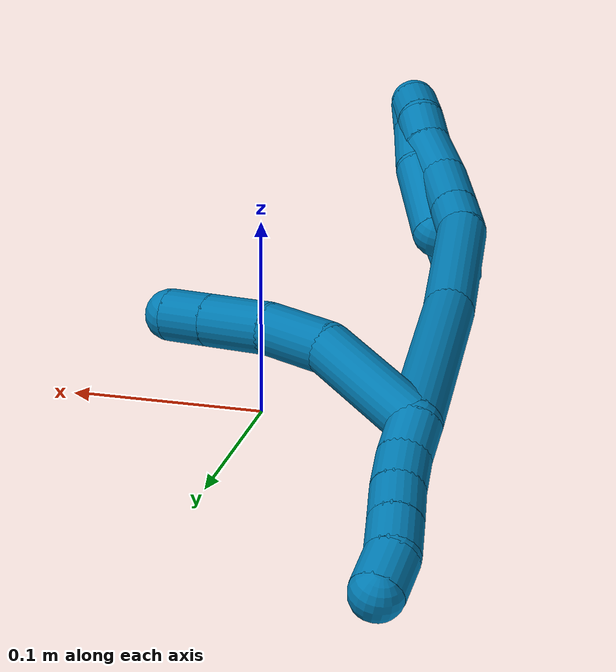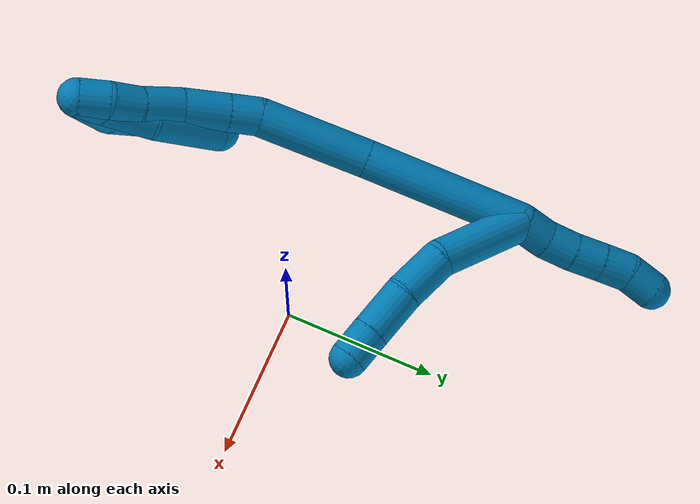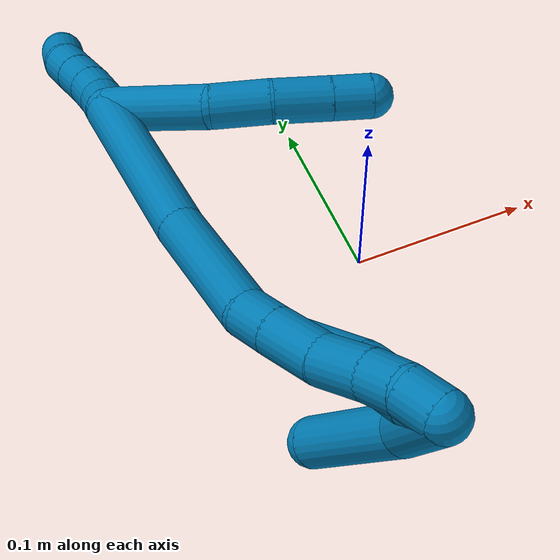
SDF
<sdf version="1.7">
 <world name="default">
  <model name="9">
   <static>0</static>
   <link name="9">
    <collision name="collision-cylinder-e_1_2_8">
     <pose>0.022627 -0.021543 -0.001822 1.65515 0.808144 0.870982</pose>
     <geometry><cylinder><radius>0.0125</radius><length>0.062591</length></cylinder></geometry>
     <surface>
      <friction><ode><mu>1.16</mu><mu2>1.16</mu2><slip1>0</slip1><slip2>0</slip2></ode></friction>
      <contact><ode><kp>1e+06</kp><kd>1</kd><max_vel>0</max_vel><min_depth>0.001</min_depth></ode></contact>
     </surface>
    </collision>
    <visual name="visual-cylinder-e_1_2_8">
     <pose>0.022627 -0.021543 -0.001822 1.65515 0.808144 0.870982</pose>
     <geometry><cylinder><radius>0.0125</radius><length>0.062591</length></cylinder></geometry>
     <material><ambient>0 0.490196 0.709804 1</ambient></material>
    </visual>
    <collision name="collision-cylinder-e_2_8_9">
     <pose>0.059779 -0.050211 -0.007309 2.04598 1.06675 1.53809</pose>
     <geometry><cylinder><radius>0.0125</radius><length>0.033177</length></cylinder></geometry>
     <surface>
      <friction><ode><mu>1.16</mu><mu2>1.16</mu2><slip1>0</slip1><slip2>0</slip2></ode></friction>
      <contact><ode><kp>1e+06</kp><kd>1</kd><max_vel>0</max_vel><min_depth>0.001</min_depth></ode></contact>
     </surface>
    </collision>
    <visual name="visual-cylinder-e_2_8_9">
     <pose>0.059779 -0.050211 -0.007309 2.04598 1.06675 1.53809</pose>
     <geometry><cylinder><radius>0.0125</radius><length>0.033177</length></cylinder></geometry>
     <material><ambient>0 0.490196 0.709804 1</ambient></material>
    </visual>
    <collision name="collision-cylinder-e_3_9_10">
     <pose>0.088606 -0.062518 -0.016381 2.37732 1.08839 1.96911</pose>
     <geometry><cylinder><radius>0.0125</radius><length>0.032287</length></cylinder></geometry>
     <surface>
      <friction><ode><mu>1.16</mu><mu2>1.16</mu2><slip1>0</slip1><slip2>0</slip2></ode></friction>
      <contact><ode><kp>1e+06</kp><kd>1</kd><max_vel>0</max_vel><min_depth>0.001</min_depth></ode></contact>
     </surface>
    </collision>
    <visual name="visual-cylinder-e_3_9_10">
     <pose>0.088606 -0.062518 -0.016381 2.37732 1.08839 1.96911</pose>
     <geometry><cylinder><radius>0.0125</radius><length>0.032287</length></cylinder></geometry>
     <material><ambient>0 0.490196 0.709804 1</ambient></material>
    </visual>
    <collision name="collision-cylinder-e_4_10_6">
     <pose>0.112673 -0.071168 -0.025392 2.37575 1.09743 1.9764</pose>
     <geometry><cylinder><radius>0.0125</radius><length>0.021945</length></cylinder></geometry>
     <surface>
      <friction><ode><mu>1.16</mu><mu2>1.16</mu2><slip1>0</slip1><slip2>0</slip2></ode></friction>
      <contact><ode><kp>1e+06</kp><kd>1</kd><max_vel>0</max_vel><min_depth>0.001</min_depth></ode></contact>
     </surface>
    </collision>
    <visual name="visual-cylinder-e_4_10_6">
     <pose>0.112673 -0.071168 -0.025392 2.37575 1.09743 1.9764</pose>
     <geometry><cylinder><radius>0.0125</radius><length>0.021945</length></cylinder></geometry>
     <material><ambient>0 0.490196 0.709804 1</ambient></material>
    </visual>
    <collision name="collision-cylinder-e_1_2_11">
     <pose>0.000913 0.009678 -0.002347 -1.80871 0.091463 -0.116245</pose>
     <geometry><cylinder><radius>0.0125</radius><length>0.02</length></cylinder></geometry>
     <surface>
      <friction><ode><mu>1.16</mu><mu2>1.16</mu2><slip1>0</slip1><slip2>0</slip2></ode></friction>
      <contact><ode><kp>1e+06</kp><kd>1</kd><max_vel>0</max_vel><min_depth>0.001</min_depth></ode></contact>
     </surface>
    </collision>
    <visual name="visual-cylinder-e_1_2_11">
     <pose>0.000913 0.009678 -0.002347 -1.80871 0.091463 -0.116245</pose>
     <geometry><cylinder><radius>0.0125</radius><length>0.02</length></cylinder></geometry>
     <material><ambient>0 0.490196 0.709804 1</ambient></material>
    </visual>
    <collision name="collision-cylinder-e_2_11_12">
     <pose>0.001787 0.029336 -0.005318 -1.63321 -0.003974 0.00423</pose>
     <geometry><cylinder><radius>0.0125</radius><length>0.02</length></cylinder></geometry>
     <surface>
      <friction><ode><mu>1.16</mu><mu2>1.16</mu2><slip1>0</slip1><slip2>0</slip2></ode></friction>
      <contact><ode><kp>1e+06</kp><kd>1</kd><max_vel>0</max_vel><min_depth>0.001</min_depth></ode></contact>
     </surface>
    </collision>
    <visual name="visual-cylinder-e_2_11_12">
     <pose>0.001787 0.029336 -0.005318 -1.63321 -0.003974 0.00423</pose>
     <geometry><cylinder><radius>0.0125</radius><length>0.02</length></cylinder></geometry>
     <material><ambient>0 0.490196 0.709804 1</ambient></material>
    </visual>
    <collision name="collision-cylinder-e_3_12_13">
     <pose>0.000971 0.049284 -0.006121 -1.58882 -0.077712 0.079125</pose>
     <geometry><cylinder><radius>0.0125</radius><length>0.02</length></cylinder></geometry>
     <surface>
      <friction><ode><mu>1.16</mu><mu2>1.16</mu2><slip1>0</slip1><slip2>0</slip2></ode></friction>
      <contact><ode><kp>1e+06</kp><kd>1</kd><max_vel>0</max_vel><min_depth>0.001</min_depth></ode></contact>
     </surface>
    </collision>
    <visual name="visual-cylinder-e_3_12_13">
     <pose>0.000971 0.049284 -0.006121 -1.58882 -0.077712 0.079125</pose>
     <geometry><cylinder><radius>0.0125</radius><length>0.02</length></cylinder></geometry>
     <material><ambient>0 0.490196 0.709804 1</ambient></material>
    </visual>
    <collision name="collision-cylinder-e_4_13_14">
     <pose>-0.000479 0.069225 -0.00662 -1.60276 -0.06745 0.06964</pose>
     <geometry><cylinder><radius>0.0125</radius><length>0.02</length></cylinder></geometry>
     <surface>
      <friction><ode><mu>1.16</mu><mu2>1.16</mu2><slip1>0</slip1><slip2>0</slip2></ode></friction>
      <contact><ode><kp>1e+06</kp><kd>1</kd><max_vel>0</max_vel><min_depth>0.001</min_depth></ode></contact>
     </surface>
    </collision>
    <visual name="visual-cylinder-e_4_13_14">
     <pose>-0.000479 0.069225 -0.00662 -1.60276 -0.06745 0.06964</pose>
     <geometry><cylinder><radius>0.0125</radius><length>0.02</length></cylinder></geometry>
     <material><ambient>0 0.490196 0.709804 1</ambient></material>
    </visual>
    <collision name="collision-cylinder-e_5_14_5">
     <pose>0.000527 0.088898 -0.008692 -1.74966 0.168858 -0.201917</pose>
     <geometry><cylinder><radius>0.0125</radius><length>0.02</length></cylinder></geometry>
     <surface>
      <friction><ode><mu>1.16</mu><mu2>1.16</mu2><slip1>0</slip1><slip2>0</slip2></ode></friction>
      <contact><ode><kp>1e+06</kp><kd>1</kd><max_vel>0</max_vel><min_depth>0.001</min_depth></ode></contact>
     </surface>
    </collision>
    <visual name="visual-cylinder-e_5_14_5">
     <pose>0.000527 0.088898 -0.008692 -1.74966 0.168858 -0.201917</pose>
     <geometry><cylinder><radius>0.0125</radius><length>0.02</length></cylinder></geometry>
     <material><ambient>0 0.490196 0.709804 1</ambient></material>
    </visual>
    <collision name="collision-cylinder-e_1_2_15">
     <pose>-0.003211 -0.052531 -0.007698 1.71631 -0.060397 -0.069886</pose>
     <geometry><cylinder><radius>0.0125</radius><length>0.106378</length></cylinder></geometry>
     <surface>
      <friction><ode><mu>1.16</mu><mu2>1.16</mu2><slip1>0</slip1><slip2>0</slip2></ode></friction>
      <contact><ode><kp>1e+06</kp><kd>1</kd><max_vel>0</max_vel><min_depth>0.001</min_depth></ode></contact>
     </surface>
    </collision>
    <visual name="visual-cylinder-e_1_2_15">
     <pose>-0.003211 -0.052531 -0.007698 1.71631 -0.060397 -0.069886</pose>
     <geometry><cylinder><radius>0.0125</radius><length>0.106378</length></cylinder></geometry>
     <material><ambient>0 0.490196 0.709804 1</ambient></material>
    </visual>
    <collision name="collision-cylinder-e_2_15_16">
     <pose>-0.006297 -0.141762 -0.017668 1.63262 0.003366 0.003581</pose>
     <geometry><cylinder><radius>0.0125</radius><length>0.07354</length></cylinder></geometry>
     <surface>
      <friction><ode><mu>1.16</mu><mu2>1.16</mu2><slip1>0</slip1><slip2>0</slip2></ode></friction>
      <contact><ode><kp>1e+06</kp><kd>1</kd><max_vel>0</max_vel><min_depth>0.001</min_depth></ode></contact>
     </surface>
    </collision>
    <visual name="visual-cylinder-e_2_15_16">
     <pose>-0.006297 -0.141762 -0.017668 1.63262 0.003366 0.003581</pose>
     <geometry><cylinder><radius>0.0125</radius><length>0.07354</length></cylinder></geometry>
     <material><ambient>0 0.490196 0.709804 1</ambient></material>
    </visual>
    <collision name="collision-cylinder-e_3_16_17">
     <pose>-0.003398 -0.188393 -0.020644 1.64158 0.271845 0.29153</pose>
     <geometry><cylinder><radius>0.0125</radius><length>0.020672</length></cylinder></geometry>
     <surface>
      <friction><ode><mu>1.16</mu><mu2>1.16</mu2><slip1>0</slip1><slip2>0</slip2></ode></friction>
      <contact><ode><kp>1e+06</kp><kd>1</kd><max_vel>0</max_vel><min_depth>0.001</min_depth></ode></contact>
     </surface>
    </collision>
    <visual name="visual-cylinder-e_3_16_17">
     <pose>-0.003398 -0.188393 -0.020644 1.64158 0.271845 0.29153</pose>
     <geometry><cylinder><radius>0.0125</radius><length>0.020672</length></cylinder></geometry>
     <material><ambient>0 0.490196 0.709804 1</ambient></material>
    </visual>
    <collision name="collision-cylinder-e_4_17_18">
     <pose>0.003747 -0.212839 -0.022143 1.62546 0.292014 0.308177</pose>
     <geometry><cylinder><radius>0.0125</radius><length>0.030358</length></cylinder></geometry>
     <surface>
      <friction><ode><mu>1.16</mu><mu2>1.16</mu2><slip1>0</slip1><slip2>0</slip2></ode></friction>
      <contact><ode><kp>1e+06</kp><kd>1</kd><max_vel>0</max_vel><min_depth>0.001</min_depth></ode></contact>
     </surface>
    </collision>
    <visual name="visual-cylinder-e_4_17_18">
     <pose>0.003747 -0.212839 -0.022143 1.62546 0.292014 0.308177</pose>
     <geometry><cylinder><radius>0.0125</radius><length>0.030358</length></cylinder></geometry>
     <material><ambient>0 0.490196 0.709804 1</ambient></material>
    </visual>
    <collision name="collision-cylinder-e_5_18_19">
     <pose>0.014003 -0.239733 -0.022046 1.49893 0.442872 0.413031</pose>
     <geometry><cylinder><radius>0.0125</radius><length>0.027473</length></cylinder></geometry>
     <surface>
      <friction><ode><mu>1.16</mu><mu2>1.16</mu2><slip1>0</slip1><slip2>0</slip2></ode></friction>
      <contact><ode><kp>1e+06</kp><kd>1</kd><max_vel>0</max_vel><min_depth>0.001</min_depth></ode></contact>
     </surface>
    </collision>
    <visual name="visual-cylinder-e_5_18_19">
     <pose>0.014003 -0.239733 -0.022046 1.49893 0.442872 0.413031</pose>
     <geometry><cylinder><radius>0.0125</radius><length>0.027473</length></cylinder></geometry>
     <material><ambient>0 0.490196 0.709804 1</ambient></material>
    </visual>
    <collision name="collision-cylinder-e_6_19_20">
     <pose>0.02314 -0.262005 -0.02 1.45457 0.315428 0.281227</pose>
     <geometry><cylinder><radius>0.0125</radius><length>0.020954</length></cylinder></geometry>
     <surface>
      <friction><ode><mu>1.16</mu><mu2>1.16</mu2><slip1>0</slip1><slip2>0</slip2></ode></friction>
      <contact><ode><kp>1e+06</kp><kd>1</kd><max_vel>0</max_vel><min_depth>0.001</min_depth></ode></contact>
     </surface>
    </collision>
    <visual name="visual-cylinder-e_6_19_20">
     <pose>0.02314 -0.262005 -0.02 1.45457 0.315428 0.281227</pose>
     <geometry><cylinder><radius>0.0125</radius><length>0.020954</length></cylinder></geometry>
     <material><ambient>0 0.490196 0.709804 1</ambient></material>
    </visual>
    <collision name="collision-cylinder-e_7_20_1">
     <pose>0.029151 -0.28174 -0.020205 1.7082 0.271053 0.310512</pose>
     <geometry><cylinder><radius>0.0125</radius><length>0.020624</length></cylinder></geometry>
     <surface>
      <friction><ode><mu>1.16</mu><mu2>1.16</mu2><slip1>0</slip1><slip2>0</slip2></ode></friction>
      <contact><ode><kp>1e+06</kp><kd>1</kd><max_vel>0</max_vel><min_depth>0.001</min_depth></ode></contact>
     </surface>
    </collision>
    <visual name="visual-cylinder-e_7_20_1">
     <pose>0.029151 -0.28174 -0.020205 1.7082 0.271053 0.310512</pose>
     <geometry><cylinder><radius>0.0125</radius><length>0.020624</length></cylinder></geometry>
     <material><ambient>0 0.490196 0.709804 1</ambient></material>
    </visual>
    <collision name="collision-cylinder-e_1_1_21">
     <pose>0.026214 -0.278757 -0.033922 -2.33753 -0.309695 0.703699</pose>
     <geometry><cylinder><radius>0.0125</radius><length>0.037396</length></cylinder></geometry>
     <surface>
      <friction><ode><mu>1.16</mu><mu2>1.16</mu2><slip1>0</slip1><slip2>0</slip2></ode></friction>
      <contact><ode><kp>1e+06</kp><kd>1</kd><max_vel>0</max_vel><min_depth>0.001</min_depth></ode></contact>
     </surface>
    </collision>
    <visual name="visual-cylinder-e_1_1_21">
     <pose>0.026214 -0.278757 -0.033922 -2.33753 -0.309695 0.703699</pose>
     <geometry><cylinder><radius>0.0125</radius><length>0.037396</length></cylinder></geometry>
     <material><ambient>0 0.490196 0.709804 1</ambient></material>
    </visual>
    <collision name="collision-cylinder-e_2_21_4">
     <pose>0.005036 -0.24283 -0.060648 -2.1273 -0.51728 0.888794</pose>
     <geometry><cylinder><radius>0.0125</radius><length>0.062604</length></cylinder></geometry>
     <surface>
      <friction><ode><mu>1.16</mu><mu2>1.16</mu2><slip1>0</slip1><slip2>0</slip2></ode></friction>
      <contact><ode><kp>1e+06</kp><kd>1</kd><max_vel>0</max_vel><min_depth>0.001</min_depth></ode></contact>
     </surface>
    </collision>
    <visual name="visual-cylinder-e_2_21_4">
     <pose>0.005036 -0.24283 -0.060648 -2.1273 -0.51728 0.888794</pose>
     <geometry><cylinder><radius>0.0125</radius><length>0.062604</length></cylinder></geometry>
     <material><ambient>0 0.490196 0.709804 1</ambient></material>
    </visual>
    <collision name="collision-cylinder-e_1_1_22">
     <pose>0.029584 -0.282062 -0.023821 -1.80338 -0.233702 0.294725</pose>
     <geometry><cylinder><radius>0.0125</radius><length>0.020113</length></cylinder></geometry>
     <surface>
      <friction><ode><mu>1.16</mu><mu2>1.16</mu2><slip1>0</slip1><slip2>0</slip2></ode></friction>
      <contact><ode><kp>1e+06</kp><kd>1</kd><max_vel>0</max_vel><min_depth>0.001</min_depth></ode></contact>
     </surface>
    </collision>
    <visual name="visual-cylinder-e_1_1_22">
     <pose>0.029584 -0.282062 -0.023821 -1.80338 -0.233702 0.294725</pose>
     <geometry><cylinder><radius>0.0125</radius><length>0.020113</length></cylinder></geometry>
     <material><ambient>0 0.490196 0.709804 1</ambient></material>
    </visual>
    <collision name="collision-cylinder-e_2_22_23">
     <pose>0.024416 -0.256074 -0.027265 -1.64283 -0.170254 0.182914</pose>
     <geometry><cylinder><radius>0.0125</radius><length>0.033508</length></cylinder></geometry>
     <surface>
      <friction><ode><mu>1.16</mu><mu2>1.16</mu2><slip1>0</slip1><slip2>0</slip2></ode></friction>
      <contact><ode><kp>1e+06</kp><kd>1</kd><max_vel>0</max_vel><min_depth>0.001</min_depth></ode></contact>
     </surface>
    </collision>
    <visual name="visual-cylinder-e_2_22_23">
     <pose>0.024416 -0.256074 -0.027265 -1.64283 -0.170254 0.182914</pose>
     <geometry><cylinder><radius>0.0125</radius><length>0.033508</length></cylinder></geometry>
     <material><ambient>0 0.490196 0.709804 1</ambient></material>
    </visual>
    <collision name="collision-cylinder-e_3_23_3">
     <pose>0.013798 -0.218111 -0.032358 -1.75051 -0.342118 0.408154</pose>
     <geometry><cylinder><radius>0.0125</radius><length>0.046379</length></cylinder></geometry>
     <surface>
      <friction><ode><mu>1.16</mu><mu2>1.16</mu2><slip1>0</slip1><slip2>0</slip2></ode></friction>
      <contact><ode><kp>1e+06</kp><kd>1</kd><max_vel>0</max_vel><min_depth>0.001</min_depth></ode></contact>
     </surface>
    </collision>
    <visual name="visual-cylinder-e_3_23_3">
     <pose>0.013798 -0.218111 -0.032358 -1.75051 -0.342118 0.408154</pose>
     <geometry><cylinder><radius>0.0125</radius><length>0.046379</length></cylinder></geometry>
     <material><ambient>0 0.490196 0.709804 1</ambient></material>
    </visual>
    <collision name="collision-sphere-3">
     <pose>0.006018 -0.196617 -0.036263 0 -0 0</pose>
     <geometry><sphere><radius>0.0125</radius></sphere></geometry>
     <surface>
      <friction><ode><mu>1.16</mu><mu2>1.16</mu2><slip1>0</slip1><slip2>0</slip2></ode></friction>
      <contact><ode><kp>1e+06</kp><kd>1</kd><max_vel>0</max_vel><min_depth>0.001</min_depth></ode></contact>
     </surface>
    </collision>
    <visual name="visual-sphere-3">
     <pose>0.006018 -0.196617 -0.036263 0 -0 0</pose>
     <geometry><sphere><radius>0.0125</radius></sphere></geometry>
     <material><ambient>0 0.490196 0.709804 1</ambient></material>
    </visual>
    <collision name="collision-sphere-23">
     <pose>0.021577 -0.239605 -0.028453 0 -0 0</pose>
     <geometry><sphere><radius>0.0125</radius></sphere></geometry>
     <surface>
      <friction><ode><mu>1.16</mu><mu2>1.16</mu2><slip1>0</slip1><slip2>0</slip2></ode></friction>
      <contact><ode><kp>1e+06</kp><kd>1</kd><max_vel>0</max_vel><min_depth>0.001</min_depth></ode></contact>
     </surface>
    </collision>
    <visual name="visual-sphere-23">
     <pose>0.021577 -0.239605 -0.028453 0 -0 0</pose>
     <geometry><sphere><radius>0.0125</radius></sphere></geometry>
     <material><ambient>0 0.490196 0.709804 1</ambient></material>
    </visual>
    <collision name="collision-sphere-22">
     <pose>0.027255 -0.272542 -0.026076 0 -0 0</pose>
     <geometry><sphere><radius>0.0125</radius></sphere></geometry>
     <surface>
      <friction><ode><mu>1.16</mu><mu2>1.16</mu2><slip1>0</slip1><slip2>0</slip2></ode></friction>
      <contact><ode><kp>1e+06</kp><kd>1</kd><max_vel>0</max_vel><min_depth>0.001</min_depth></ode></contact>
     </surface>
    </collision>
    <visual name="visual-sphere-22">
     <pose>0.027255 -0.272542 -0.026076 0 -0 0</pose>
     <geometry><sphere><radius>0.0125</radius></sphere></geometry>
     <material><ambient>0 0.490196 0.709804 1</ambient></material>
    </visual>
    <collision name="collision-sphere-4">
     <pose>-0.010443 -0.219729 -0.075019 0 -0 0</pose>
     <geometry><sphere><radius>0.0125</radius></sphere></geometry>
     <surface>
      <friction><ode><mu>1.16</mu><mu2>1.16</mu2><slip1>0</slip1><slip2>0</slip2></ode></friction>
      <contact><ode><kp>1e+06</kp><kd>1</kd><max_vel>0</max_vel><min_depth>0.001</min_depth></ode></contact>
     </surface>
    </collision>
    <visual name="visual-sphere-4">
     <pose>-0.010443 -0.219729 -0.075019 0 -0 0</pose>
     <geometry><sphere><radius>0.0125</radius></sphere></geometry>
     <material><ambient>0 0.490196 0.709804 1</ambient></material>
    </visual>
    <collision name="collision-sphere-21">
     <pose>0.020515 -0.265932 -0.046277 0 -0 0</pose>
     <geometry><sphere><radius>0.0125</radius></sphere></geometry>
     <surface>
      <friction><ode><mu>1.16</mu><mu2>1.16</mu2><slip1>0</slip1><slip2>0</slip2></ode></friction>
      <contact><ode><kp>1e+06</kp><kd>1</kd><max_vel>0</max_vel><min_depth>0.001</min_depth></ode></contact>
     </surface>
    </collision>
    <visual name="visual-sphere-21">
     <pose>0.020515 -0.265932 -0.046277 0 -0 0</pose>
     <geometry><sphere><radius>0.0125</radius></sphere></geometry>
     <material><ambient>0 0.490196 0.709804 1</ambient></material>
    </visual>
    <collision name="collision-sphere-1">
     <pose>0.031912 -0.291582 -0.021566 0 -0 0</pose>
     <geometry><sphere><radius>0.0125</radius></sphere></geometry>
     <surface>
      <friction><ode><mu>1.16</mu><mu2>1.16</mu2><slip1>0</slip1><slip2>0</slip2></ode></friction>
      <contact><ode><kp>1e+06</kp><kd>1</kd><max_vel>0</max_vel><min_depth>0.001</min_depth></ode></contact>
     </surface>
    </collision>
    <visual name="visual-sphere-1">
     <pose>0.031912 -0.291582 -0.021566 0 -0 0</pose>
     <geometry><sphere><radius>0.0125</radius></sphere></geometry>
     <material><ambient>0 0.490196 0.709804 1</ambient></material>
    </visual>
    <collision name="collision-sphere-11">
     <pose>0.001827 0.019355 -0.004694 0 -0 0</pose>
     <geometry><sphere><radius>0.0125</radius></sphere></geometry>
     <surface>
      <friction><ode><mu>1.16</mu><mu2>1.16</mu2><slip1>0</slip1><slip2>0</slip2></ode></friction>
      <contact><ode><kp>1e+06</kp><kd>1</kd><max_vel>0</max_vel><min_depth>0.001</min_depth></ode></contact>
     </surface>
    </collision>
    <visual name="visual-sphere-11">
     <pose>0.001827 0.019355 -0.004694 0 -0 0</pose>
     <geometry><sphere><radius>0.0125</radius></sphere></geometry>
     <material><ambient>0 0.490196 0.709804 1</ambient></material>
    </visual>
    <collision name="collision-sphere-6">
     <pose>0.122439 -0.074635 -0.028998 0 -0 0</pose>
     <geometry><sphere><radius>0.0125</radius></sphere></geometry>
     <surface>
      <friction><ode><mu>1.16</mu><mu2>1.16</mu2><slip1>0</slip1><slip2>0</slip2></ode></friction>
      <contact><ode><kp>1e+06</kp><kd>1</kd><max_vel>0</max_vel><min_depth>0.001</min_depth></ode></contact>
     </surface>
    </collision>
    <visual name="visual-sphere-6">
     <pose>0.122439 -0.074635 -0.028998 0 -0 0</pose>
     <geometry><sphere><radius>0.0125</radius></sphere></geometry>
     <material><ambient>0 0.490196 0.709804 1</ambient></material>
    </visual>
    <collision name="collision-sphere-10">
     <pose>0.102908 -0.0677 -0.021787 0 -0 0</pose>
     <geometry><sphere><radius>0.0125</radius></sphere></geometry>
     <surface>
      <friction><ode><mu>1.16</mu><mu2>1.16</mu2><slip1>0</slip1><slip2>0</slip2></ode></friction>
      <contact><ode><kp>1e+06</kp><kd>1</kd><max_vel>0</max_vel><min_depth>0.001</min_depth></ode></contact>
     </surface>
    </collision>
    <visual name="visual-sphere-10">
     <pose>0.102908 -0.0677 -0.021787 0 -0 0</pose>
     <geometry><sphere><radius>0.0125</radius></sphere></geometry>
     <material><ambient>0 0.490196 0.709804 1</ambient></material>
    </visual>
    <collision name="collision-sphere-9">
     <pose>0.074305 -0.057335 -0.010974 0 -0 0</pose>
     <geometry><sphere><radius>0.0125</radius></sphere></geometry>
     <surface>
      <friction><ode><mu>1.16</mu><mu2>1.16</mu2><slip1>0</slip1><slip2>0</slip2></ode></friction>
      <contact><ode><kp>1e+06</kp><kd>1</kd><max_vel>0</max_vel><min_depth>0.001</min_depth></ode></contact>
     </surface>
    </collision>
    <visual name="visual-sphere-9">
     <pose>0.074305 -0.057335 -0.010974 0 -0 0</pose>
     <geometry><sphere><radius>0.0125</radius></sphere></geometry>
     <material><ambient>0 0.490196 0.709804 1</ambient></material>
    </visual>
    <collision name="collision-sphere-2">
     <geometry><sphere><radius>0.0125</radius></sphere></geometry>
     <surface>
      <friction><ode><mu>1.16</mu><mu2>1.16</mu2><slip1>0</slip1><slip2>0</slip2></ode></friction>
      <contact><ode><kp>1e+06</kp><kd>1</kd><max_vel>0</max_vel><min_depth>0.001</min_depth></ode></contact>
     </surface>
    </collision>
    <visual name="visual-sphere-2">
     <geometry><sphere><radius>0.0125</radius></sphere></geometry>
     <material><ambient>0 0.490196 0.709804 1</ambient></material>
    </visual>
    <collision name="collision-sphere-19">
     <pose>0.01989 -0.252112 -0.021155 0 -0 0</pose>
     <geometry><sphere><radius>0.0125</radius></sphere></geometry>
     <surface>
      <friction><ode><mu>1.16</mu><mu2>1.16</mu2><slip1>0</slip1><slip2>0</slip2></ode></friction>
      <contact><ode><kp>1e+06</kp><kd>1</kd><max_vel>0</max_vel><min_depth>0.001</min_depth></ode></contact>
     </surface>
    </collision>
    <visual name="visual-sphere-19">
     <pose>0.01989 -0.252112 -0.021155 0 -0 0</pose>
     <geometry><sphere><radius>0.0125</radius></sphere></geometry>
     <material><ambient>0 0.490196 0.709804 1</ambient></material>
    </visual>
    <collision name="collision-sphere-8">
     <pose>0.045253 -0.043086 -0.003643 0 -0 0</pose>
     <geometry><sphere><radius>0.0125</radius></sphere></geometry>
     <surface>
      <friction><ode><mu>1.16</mu><mu2>1.16</mu2><slip1>0</slip1><slip2>0</slip2></ode></friction>
      <contact><ode><kp>1e+06</kp><kd>1</kd><max_vel>0</max_vel><min_depth>0.001</min_depth></ode></contact>
     </surface>
    </collision>
    <visual name="visual-sphere-8">
     <pose>0.045253 -0.043086 -0.003643 0 -0 0</pose>
     <geometry><sphere><radius>0.0125</radius></sphere></geometry>
     <material><ambient>0 0.490196 0.709804 1</ambient></material>
    </visual>
    <collision name="collision-sphere-12">
     <pose>0.001747 0.039316 -0.005941 0 -0 0</pose>
     <geometry><sphere><radius>0.0125</radius></sphere></geometry>
     <surface>
      <friction><ode><mu>1.16</mu><mu2>1.16</mu2><slip1>0</slip1><slip2>0</slip2></ode></friction>
      <contact><ode><kp>1e+06</kp><kd>1</kd><max_vel>0</max_vel><min_depth>0.001</min_depth></ode></contact>
     </surface>
    </collision>
    <visual name="visual-sphere-12">
     <pose>0.001747 0.039316 -0.005941 0 -0 0</pose>
     <geometry><sphere><radius>0.0125</radius></sphere></geometry>
     <material><ambient>0 0.490196 0.709804 1</ambient></material>
    </visual>
    <collision name="collision-sphere-13">
     <pose>0.000195 0.059253 -0.006301 0 -0 0</pose>
     <geometry><sphere><radius>0.0125</radius></sphere></geometry>
     <surface>
      <friction><ode><mu>1.16</mu><mu2>1.16</mu2><slip1>0</slip1><slip2>0</slip2></ode></friction>
      <contact><ode><kp>1e+06</kp><kd>1</kd><max_vel>0</max_vel><min_depth>0.001</min_depth></ode></contact>
     </surface>
    </collision>
    <visual name="visual-sphere-13">
     <pose>0.000195 0.059253 -0.006301 0 -0 0</pose>
     <geometry><sphere><radius>0.0125</radius></sphere></geometry>
     <material><ambient>0 0.490196 0.709804 1</ambient></material>
    </visual>
    <collision name="collision-sphere-14">
     <pose>-0.001153 0.079197 -0.006938 0 -0 0</pose>
     <geometry><sphere><radius>0.0125</radius></sphere></geometry>
     <surface>
      <friction><ode><mu>1.16</mu><mu2>1.16</mu2><slip1>0</slip1><slip2>0</slip2></ode></friction>
      <contact><ode><kp>1e+06</kp><kd>1</kd><max_vel>0</max_vel><min_depth>0.001</min_depth></ode></contact>
     </surface>
    </collision>
    <visual name="visual-sphere-14">
     <pose>-0.001153 0.079197 -0.006938 0 -0 0</pose>
     <geometry><sphere><radius>0.0125</radius></sphere></geometry>
     <material><ambient>0 0.490196 0.709804 1</ambient></material>
    </visual>
    <collision name="collision-sphere-5">
     <pose>0.002208 0.098598 -0.010446 0 -0 0</pose>
     <geometry><sphere><radius>0.0125</radius></sphere></geometry>
     <surface>
      <friction><ode><mu>1.16</mu><mu2>1.16</mu2><slip1>0</slip1><slip2>0</slip2></ode></friction>
      <contact><ode><kp>1e+06</kp><kd>1</kd><max_vel>0</max_vel><min_depth>0.001</min_depth></ode></contact>
     </surface>
    </collision>
    <visual name="visual-sphere-5">
     <pose>0.002208 0.098598 -0.010446 0 -0 0</pose>
     <geometry><sphere><radius>0.0125</radius></sphere></geometry>
     <material><ambient>0 0.490196 0.709804 1</ambient></material>
    </visual>
    <collision name="collision-sphere-15">
     <pose>-0.006421 -0.105062 -0.015396 0 -0 0</pose>
     <geometry><sphere><radius>0.0125</radius></sphere></geometry>
     <surface>
      <friction><ode><mu>1.16</mu><mu2>1.16</mu2><slip1>0</slip1><slip2>0</slip2></ode></friction>
      <contact><ode><kp>1e+06</kp><kd>1</kd><max_vel>0</max_vel><min_depth>0.001</min_depth></ode></contact>
     </surface>
    </collision>
    <visual name="visual-sphere-15">
     <pose>-0.006421 -0.105062 -0.015396 0 -0 0</pose>
     <geometry><sphere><radius>0.0125</radius></sphere></geometry>
     <material><ambient>0 0.490196 0.709804 1</ambient></material>
    </visual>
    <collision name="collision-sphere-16">
     <pose>-0.006173 -0.178461 -0.01994 0 -0 0</pose>
     <geometry><sphere><radius>0.0125</radius></sphere></geometry>
     <surface>
      <friction><ode><mu>1.16</mu><mu2>1.16</mu2><slip1>0</slip1><slip2>0</slip2></ode></friction>
      <contact><ode><kp>1e+06</kp><kd>1</kd><max_vel>0</max_vel><min_depth>0.001</min_depth></ode></contact>
     </surface>
    </collision>
    <visual name="visual-sphere-16">
     <pose>-0.006173 -0.178461 -0.01994 0 -0 0</pose>
     <geometry><sphere><radius>0.0125</radius></sphere></geometry>
     <material><ambient>0 0.490196 0.709804 1</ambient></material>
    </visual>
    <collision name="collision-sphere-17">
     <pose>-0.000623 -0.198324 -0.021349 0 -0 0</pose>
     <geometry><sphere><radius>0.0125</radius></sphere></geometry>
     <surface>
      <friction><ode><mu>1.16</mu><mu2>1.16</mu2><slip1>0</slip1><slip2>0</slip2></ode></friction>
      <contact><ode><kp>1e+06</kp><kd>1</kd><max_vel>0</max_vel><min_depth>0.001</min_depth></ode></contact>
     </surface>
    </collision>
    <visual name="visual-sphere-17">
     <pose>-0.000623 -0.198324 -0.021349 0 -0 0</pose>
     <geometry><sphere><radius>0.0125</radius></sphere></geometry>
     <material><ambient>0 0.490196 0.709804 1</ambient></material>
    </visual>
    <collision name="collision-sphere-18">
     <pose>0.008117 -0.227354 -0.022937 0 -0 0</pose>
     <geometry><sphere><radius>0.0125</radius></sphere></geometry>
     <surface>
      <friction><ode><mu>1.16</mu><mu2>1.16</mu2><slip1>0</slip1><slip2>0</slip2></ode></friction>
      <contact><ode><kp>1e+06</kp><kd>1</kd><max_vel>0</max_vel><min_depth>0.001</min_depth></ode></contact>
     </surface>
    </collision>
    <visual name="visual-sphere-18">
     <pose>0.008117 -0.227354 -0.022937 0 -0 0</pose>
     <geometry><sphere><radius>0.0125</radius></sphere></geometry>
     <material><ambient>0 0.490196 0.709804 1</ambient></material>
    </visual>
    <collision name="collision-sphere-20">
     <pose>0.02639 -0.271898 -0.018845 0 -0 0</pose>
     <geometry><sphere><radius>0.0125</radius></sphere></geometry>
     <surface>
      <friction><ode><mu>1.16</mu><mu2>1.16</mu2><slip1>0</slip1><slip2>0</slip2></ode></friction>
      <contact><ode><kp>1e+06</kp><kd>1</kd><max_vel>0</max_vel><min_depth>0.001</min_depth></ode></contact>
     </surface>
    </collision>
    <visual name="visual-sphere-20">
     <pose>0.02639 -0.271898 -0.018845 0 -0 0</pose>
     <geometry><sphere><radius>0.0125</radius></sphere></geometry>
     <material><ambient>0 0.490196 0.709804 1</ambient></material>
    </visual>
    <inertial>
     <pose>0.017154 -0.127891 -0.019523 0 -0 0</pose>
     <mass>0.75</mass>
     <inertia><ixx>0.000241</ixx><ixy>0</ixy><ixz>0</ixz><iyy>2.9e-05</iyy><iyz>0</iyz><izz>0.00011</izz></inertia>
    </inertial>
   </link>
   <pose>-0.102223 0.117259 0.051022 -0.308042 -0.182719 0.143876</pose>
  </model>
 </world>
</sdf>
